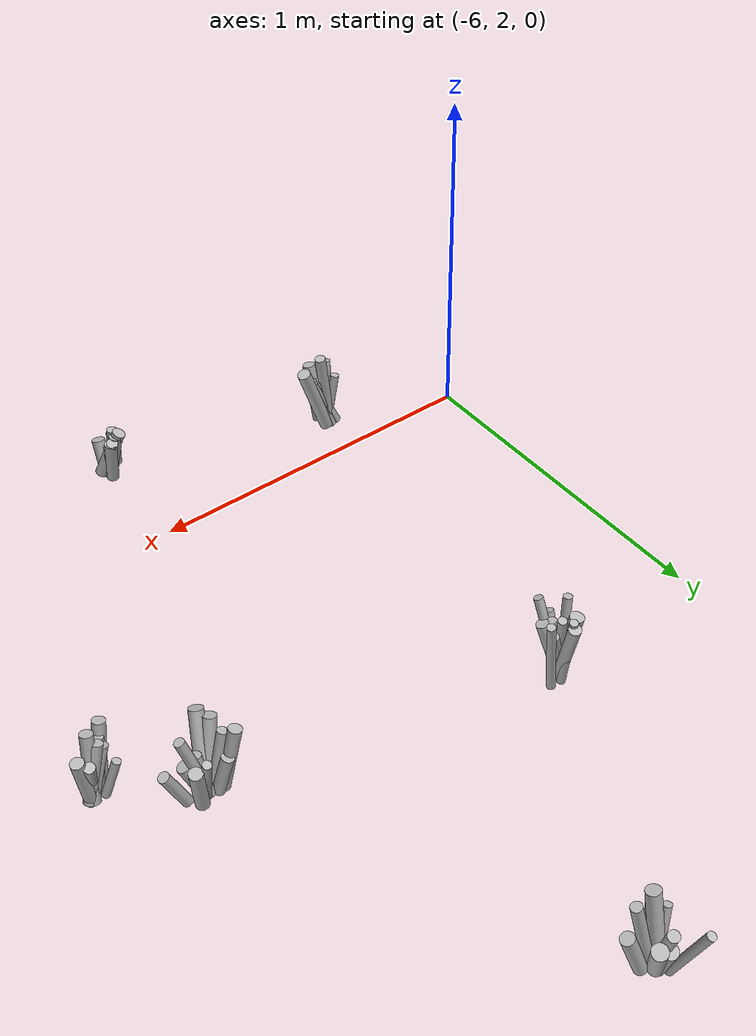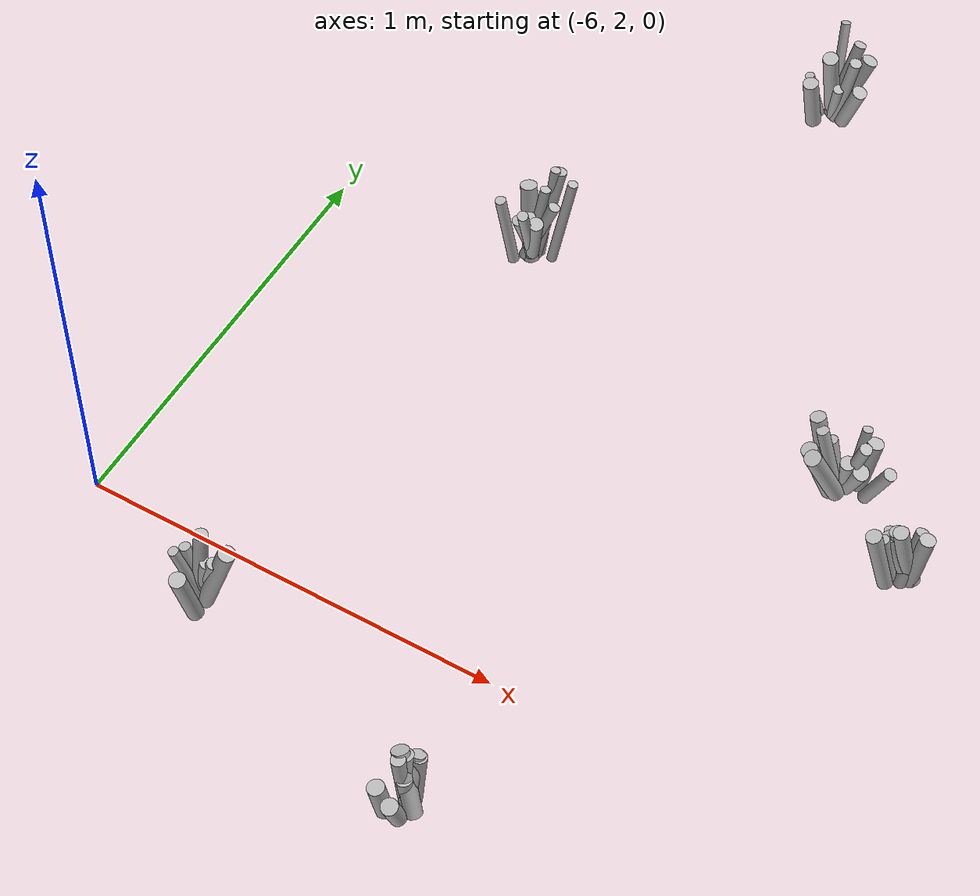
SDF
<sdf version="1.6">
 <world name="default">
  <model name="tussocks">
   <static>true</static>
   <link name="tuft20_0">
    <pose>-5.1018 3.7867 0.0614 0 0.2824 5.3249</pose>
    <visual name="tuft20_0_v">
     <geometry><cylinder><radius>0.0125</radius><length>0.1335</length></cylinder></geometry>
     <material>
      <script>
       <uri>model://bushfire/materials/scripts</uri>
       <uri>model://bushfire/materials/textures</uri>
       <name>Bushfire/Tussock</name>
      </script>
     </material>
    </visual>
   </link>
   <link name="tuft20_1">
    <pose>-5.1377 3.8759 0.0983 0 0.3589 1.8617</pose>
    <visual name="tuft20_1_v">
     <geometry><cylinder><radius>0.0115</radius><length>0.2136</length></cylinder></geometry>
     <material>
      <script>
       <uri>model://bushfire/materials/scripts</uri>
       <uri>model://bushfire/materials/textures</uri>
       <name>Bushfire/Foliage2</name>
      </script>
     </material>
    </visual>
   </link>
   <link name="tuft20_2">
    <pose>-5.1486 3.7559 0.0653 0 0.1508 4.1886</pose>
    <visual name="tuft20_2_v">
     <geometry><cylinder><radius>0.0187</radius><length>0.1419</length></cylinder></geometry>
     <material>
      <script>
       <uri>model://bushfire/materials/scripts</uri>
       <uri>model://bushfire/materials/textures</uri>
       <name>Bushfire/Tussock</name>
      </script>
     </material>
    </visual>
   </link>
   <link name="tuft20_3">
    <pose>-5.1185 3.7922 0.1065 0 0.2208 4.6699</pose>
    <visual name="tuft20_3_v">
     <geometry><cylinder><radius>0.0188</radius><length>0.2314</length></cylinder></geometry>
     <material>
      <script>
       <uri>model://bushfire/materials/scripts</uri>
       <uri>model://bushfire/materials/textures</uri>
       <name>Bushfire/Foliage2</name>
      </script>
     </material>
    </visual>
   </link>
   <link name="tuft20_4">
    <pose>-5.0818 3.7897 0.1094 0 0.2185 5.7816</pose>
    <visual name="tuft20_4_v">
     <geometry><cylinder><radius>0.0143</radius><length>0.2378</length></cylinder></geometry>
     <material>
      <script>
       <uri>model://bushfire/materials/scripts</uri>
       <uri>model://bushfire/materials/textures</uri>
       <name>Bushfire/Tussock</name>
      </script>
     </material>
    </visual>
   </link>
   <link name="tuft20_5">
    <pose>-5.1546 3.7832 0.0638 0 0.2553 3.7586</pose>
    <visual name="tuft20_5_v">
     <geometry><cylinder><radius>0.0113</radius><length>0.1388</length></cylinder></geometry>
     <material>
      <script>
       <uri>model://bushfire/materials/scripts</uri>
       <uri>model://bushfire/materials/textures</uri>
       <name>Bushfire/Foliage2</name>
      </script>
     </material>
    </visual>
   </link>
   <link name="tuft20_6">
    <pose>-5.0622 3.7895 0.0647 0 0.3214 5.9387</pose>
    <visual name="tuft20_6_v">
     <geometry><cylinder><radius>0.0178</radius><length>0.1407</length></cylinder></geometry>
     <material>
      <script>
       <uri>model://bushfire/materials/scripts</uri>
       <uri>model://bushfire/materials/textures</uri>
       <name>Bushfire/Tussock</name>
      </script>
     </material>
    </visual>
   </link>
   <link name="tuft20_7">
    <pose>-5.1047 3.8371 0.0609 0 0.3220 1.1311</pose>
    <visual name="tuft20_7_v">
     <geometry><cylinder><radius>0.0197</radius><length>0.1323</length></cylinder></geometry>
     <material>
      <script>
       <uri>model://bushfire/materials/scripts</uri>
       <uri>model://bushfire/materials/textures</uri>
       <name>Bushfire/Foliage2</name>
      </script>
     </material>
    </visual>
   </link>
   <link name="tuft20_8">
    <pose>-5.1036 3.8341 0.0971 0 0.3296 1.0528</pose>
    <visual name="tuft20_8_v">
     <geometry><cylinder><radius>0.0146</radius><length>0.2111</length></cylinder></geometry>
     <material>
      <script>
       <uri>model://bushfire/materials/scripts</uri>
       <uri>model://bushfire/materials/textures</uri>
       <name>Bushfire/Foliage2</name>
      </script>
     </material>
    </visual>
   </link>
   <link name="tuft20_9">
    <pose>-5.0822 3.8384 0.0815 0 0.3940 0.6854</pose>
    <visual name="tuft20_9_v">
     <geometry><cylinder><radius>0.0197</radius><length>0.1771</length></cylinder></geometry>
     <material>
      <script>
       <uri>model://bushfire/materials/scripts</uri>
       <uri>model://bushfire/materials/textures</uri>
       <name>Bushfire/Tussock</name>
      </script>
     </material>
    </visual>
   </link>
   <link name="tuft24_0">
    <pose>-5.6485 1.8556 0.0969 0 0.2254 3.9898</pose>
    <visual name="tuft24_0_v">
     <geometry><cylinder><radius>0.0116</radius><length>0.2106</length></cylinder></geometry>
     <material>
      <script>
       <uri>model://bushfire/materials/scripts</uri>
       <uri>model://bushfire/materials/textures</uri>
       <name>Bushfire/Foliage2</name>
      </script>
     </material>
    </visual>
   </link>
   <link name="tuft24_2">
    <pose>-5.6255 1.8738 0.0867 0 0.4151 6.1257</pose>
    <visual name="tuft24_2_v">
     <geometry><cylinder><radius>0.0137</radius><length>0.1884</length></cylinder></geometry>
     <material>
      <script>
       <uri>model://bushfire/materials/scripts</uri>
       <uri>model://bushfire/materials/textures</uri>
       <name>Bushfire/Tussock</name>
      </script>
     </material>
    </visual>
   </link>
   <link name="tuft24_3">
    <pose>-5.6271 1.8733 0.0802 0 0.2691 5.9734</pose>
    <visual name="tuft24_3_v">
     <geometry><cylinder><radius>0.0133</radius><length>0.1742</length></cylinder></geometry>
     <material>
      <script>
       <uri>model://bushfire/materials/scripts</uri>
       <uri>model://bushfire/materials/textures</uri>
       <name>Bushfire/Tussock</name>
      </script>
     </material>
    </visual>
   </link>
   <link name="tuft24_7">
    <pose>-5.6290 1.8172 0.0845 0 0.2295 4.7577</pose>
    <visual name="tuft24_7_v">
     <geometry><cylinder><radius>0.0188</radius><length>0.1836</length></cylinder></geometry>
     <material>
      <script>
       <uri>model://bushfire/materials/scripts</uri>
       <uri>model://bushfire/materials/textures</uri>
       <name>Bushfire/Tussock</name>
      </script>
     </material>
    </visual>
   </link>
   <link name="tuft24_8">
    <pose>-5.6482 1.8758 0.0809 0 0.1969 3.0774</pose>
    <visual name="tuft24_8_v">
     <geometry><cylinder><radius>0.0128</radius><length>0.1758</length></cylinder></geometry>
     <material>
      <script>
       <uri>model://bushfire/materials/scripts</uri>
       <uri>model://bushfire/materials/textures</uri>
       <name>Bushfire/Tussock</name>
      </script>
     </material>
    </visual>
   </link>
   <link name="tuft24_9">
    <pose>-5.5927 1.8762 0.1089 0 0.3194 0.0357</pose>
    <visual name="tuft24_9_v">
     <geometry><cylinder><radius>0.0196</radius><length>0.2368</length></cylinder></geometry>
     <material>
      <script>
       <uri>model://bushfire/materials/scripts</uri>
       <uri>model://bushfire/materials/textures</uri>
       <name>Bushfire/Foliage2</name>
      </script>
     </material>
    </visual>
   </link>
   <link name="tuft24_10">
    <pose>-5.6305 1.8748 0.1198 0 0.1145 0.0526</pose>
    <visual name="tuft24_10_v">
     <geometry><cylinder><radius>0.0157</radius><length>0.2605</length></cylinder></geometry>
     <material>
      <script>
       <uri>model://bushfire/materials/scripts</uri>
       <uri>model://bushfire/materials/textures</uri>
       <name>Bushfire/Tussock</name>
      </script>
     </material>
    </visual>
   </link>
   <link name="tuft76_0">
    <pose>-5.4969 3.0926 0.1189 0 0.1651 1.2052</pose>
    <visual name="tuft76_0_v">
     <geometry><cylinder><radius>0.0116</radius><length>0.2586</length></cylinder></geometry>
     <material>
      <script>
       <uri>model://bushfire/materials/scripts</uri>
       <uri>model://bushfire/materials/textures</uri>
       <name>Bushfire/Foliage2</name>
      </script>
     </material>
    </visual>
   </link>
   <link name="tuft76_1">
    <pose>-5.5089 3.0333 0.0812 0 0.1735 5.0363</pose>
    <visual name="tuft76_1_v">
     <geometry><cylinder><radius>0.0152</radius><length>0.1766</length></cylinder></geometry>
     <material>
      <script>
       <uri>model://bushfire/materials/scripts</uri>
       <uri>model://bushfire/materials/textures</uri>
       <name>Bushfire/Tussock</name>
      </script>
     </material>
    </visual>
   </link>
   <link name="tuft76_2">
    <pose>-5.4988 3.0310 0.0810 0 0.3015 5.4340</pose>
    <visual name="tuft76_2_v">
     <geometry><cylinder><radius>0.0172</radius><length>0.1760</length></cylinder></geometry>
     <material>
      <script>
       <uri>model://bushfire/materials/scripts</uri>
       <uri>model://bushfire/materials/textures</uri>
       <name>Bushfire/Foliage2</name>
      </script>
     </material>
    </visual>
   </link>
   <link name="tuft76_3">
    <pose>-5.4526 3.0815 0.1208 0 0.1723 0.4986</pose>
    <visual name="tuft76_3_v">
     <geometry><cylinder><radius>0.0118</radius><length>0.2626</length></cylinder></geometry>
     <material>
      <script>
       <uri>model://bushfire/materials/scripts</uri>
       <uri>model://bushfire/materials/textures</uri>
       <name>Bushfire/Foliage2</name>
      </script>
     </material>
    </visual>
   </link>
   <link name="tuft76_4">
    <pose>-5.4974 3.0896 0.1151 0 0.2924 1.1928</pose>
    <visual name="tuft76_4_v">
     <geometry><cylinder><radius>0.0168</radius><length>0.2502</length></cylinder></geometry>
     <material>
      <script>
       <uri>model://bushfire/materials/scripts</uri>
       <uri>model://bushfire/materials/textures</uri>
       <name>Bushfire/Foliage2</name>
      </script>
     </material>
    </visual>
   </link>
   <link name="tuft76_5">
    <pose>-5.5590 3.0137 0.0972 0 0.1447 3.7946</pose>
    <visual name="tuft76_5_v">
     <geometry><cylinder><radius>0.0128</radius><length>0.2113</length></cylinder></geometry>
     <material>
      <script>
       <uri>model://bushfire/materials/scripts</uri>
       <uri>model://bushfire/materials/textures</uri>
       <name>Bushfire/Tussock</name>
      </script>
     </material>
    </visual>
   </link>
   <link name="tuft76_6">
    <pose>-5.4979 3.0555 0.0863 0 0.3650 0.4312</pose>
    <visual name="tuft76_6_v">
     <geometry><cylinder><radius>0.0139</radius><length>0.1876</length></cylinder></geometry>
     <material>
      <script>
       <uri>model://bushfire/materials/scripts</uri>
       <uri>model://bushfire/materials/textures</uri>
       <name>Bushfire/Foliage2</name>
      </script>
     </material>
    </visual>
   </link>
   <link name="tuft76_7">
    <pose>-5.5158 3.0256 0.0870 0 0.3587 4.6268</pose>
    <visual name="tuft76_7_v">
     <geometry><cylinder><radius>0.0134</radius><length>0.1891</length></cylinder></geometry>
     <material>
      <script>
       <uri>model://bushfire/materials/scripts</uri>
       <uri>model://bushfire/materials/textures</uri>
       <name>Bushfire/Foliage2</name>
      </script>
     </material>
    </visual>
   </link>
   <link name="tuft76_8">
    <pose>-5.5059 3.0565 0.1056 0 0.1811 0.8019</pose>
    <visual name="tuft76_8_v">
     <geometry><cylinder><radius>0.0122</radius><length>0.2296</length></cylinder></geometry>
     <material>
      <script>
       <uri>model://bushfire/materials/scripts</uri>
       <uri>model://bushfire/materials/textures</uri>
       <name>Bushfire/Foliage2</name>
      </script>
     </material>
    </visual>
   </link>
   <link name="tuft76_9">
    <pose>-5.5258 3.0614 0.0991 0 0.1690 2.3023</pose>
    <visual name="tuft76_9_v">
     <geometry><cylinder><radius>0.0196</radius><length>0.2154</length></cylinder></geometry>
     <material>
      <script>
       <uri>model://bushfire/materials/scripts</uri>
       <uri>model://bushfire/materials/textures</uri>
       <name>Bushfire/Tussock</name>
      </script>
     </material>
    </visual>
   </link>
   <link name="tuft76_10">
    <pose>-5.5054 3.0140 0.1088 0 0.3416 4.9556</pose>
    <visual name="tuft76_10_v">
     <geometry><cylinder><radius>0.0127</radius><length>0.2366</length></cylinder></geometry>
     <material>
      <script>
       <uri>model://bushfire/materials/scripts</uri>
       <uri>model://bushfire/materials/textures</uri>
       <name>Bushfire/Tussock</name>
      </script>
     </material>
    </visual>
   </link>
   <link name="tuft111_0">
    <pose>-4.5826 2.8540 0.0785 0 0.2405 1.3406</pose>
    <visual name="tuft111_0_v">
     <geometry><cylinder><radius>0.0119</radius><length>0.1708</length></cylinder></geometry>
     <material>
      <script>
       <uri>model://bushfire/materials/scripts</uri>
       <uri>model://bushfire/materials/textures</uri>
       <name>Bushfire/Foliage2</name>
      </script>
     </material>
    </visual>
   </link>
   <link name="tuft111_1">
    <pose>-4.6344 2.8412 0.0530 0 0.2700 2.7890</pose>
    <visual name="tuft111_1_v">
     <geometry><cylinder><radius>0.0170</radius><length>0.1152</length></cylinder></geometry>
     <material>
      <script>
       <uri>model://bushfire/materials/scripts</uri>
       <uri>model://bushfire/materials/textures</uri>
       <name>Bushfire/Foliage2</name>
      </script>
     </material>
    </visual>
   </link>
   <link name="tuft111_2">
    <pose>-4.5879 2.8157 0.0577 0 0.2332 4.8913</pose>
    <visual name="tuft111_2_v">
     <geometry><cylinder><radius>0.0174</radius><length>0.1254</length></cylinder></geometry>
     <material>
      <script>
       <uri>model://bushfire/materials/scripts</uri>
       <uri>model://bushfire/materials/textures</uri>
       <name>Bushfire/Foliage2</name>
      </script>
     </material>
    </visual>
   </link>
   <link name="tuft111_3">
    <pose>-4.5606 2.8546 0.0675 0 0.1801 0.8045</pose>
    <visual name="tuft111_3_v">
     <geometry><cylinder><radius>0.0183</radius><length>0.1468</length></cylinder></geometry>
     <material>
      <script>
       <uri>model://bushfire/materials/scripts</uri>
       <uri>model://bushfire/materials/textures</uri>
       <name>Bushfire/Foliage2</name>
      </script>
     </material>
    </visual>
   </link>
   <link name="tuft111_4">
    <pose>-4.6216 2.7650 0.0921 0 0.4098 4.2184</pose>
    <visual name="tuft111_4_v">
     <geometry><cylinder><radius>0.0195</radius><length>0.2002</length></cylinder></geometry>
     <material>
      <script>
       <uri>model://bushfire/materials/scripts</uri>
       <uri>model://bushfire/materials/textures</uri>
       <name>Bushfire/Foliage2</name>
      </script>
     </material>
    </visual>
   </link>
   <link name="tuft111_5">
    <pose>-4.6381 2.7778 0.0838 0 0.3430 3.9086</pose>
    <visual name="tuft111_5_v">
     <geometry><cylinder><radius>0.0192</radius><length>0.1823</length></cylinder></geometry>
     <material>
      <script>
       <uri>model://bushfire/materials/scripts</uri>
       <uri>model://bushfire/materials/textures</uri>
       <name>Bushfire/Foliage2</name>
      </script>
     </material>
    </visual>
   </link>
   <link name="tuft111_6">
    <pose>-4.5184 2.8184 0.0620 0 0.3935 6.1952</pose>
    <visual name="tuft111_6_v">
     <geometry><cylinder><radius>0.0152</radius><length>0.1347</length></cylinder></geometry>
     <material>
      <script>
       <uri>model://bushfire/materials/scripts</uri>
       <uri>model://bushfire/materials/textures</uri>
       <name>Bushfire/Tussock</name>
      </script>
     </material>
    </visual>
   </link>
   <link name="tuft111_7">
    <pose>-4.6589 2.8339 0.0877 0 0.2352 3.0085</pose>
    <visual name="tuft111_7_v">
     <geometry><cylinder><radius>0.0180</radius><length>0.1906</length></cylinder></geometry>
     <material>
      <script>
       <uri>model://bushfire/materials/scripts</uri>
       <uri>model://bushfire/materials/textures</uri>
       <name>Bushfire/Foliage2</name>
      </script>
     </material>
    </visual>
   </link>
   <link name="tuft111_8">
    <pose>-4.5765 2.8170 0.0946 0 0.2994 5.7492</pose>
    <visual name="tuft111_8_v">
     <geometry><cylinder><radius>0.0140</radius><length>0.2057</length></cylinder></geometry>
     <material>
      <script>
       <uri>model://bushfire/materials/scripts</uri>
       <uri>model://bushfire/materials/textures</uri>
       <name>Bushfire/Foliage2</name>
      </script>
     </material>
    </visual>
   </link>
   <link name="tuft111_9">
    <pose>-4.6363 2.8185 0.0831 0 0.2475 3.2730</pose>
    <visual name="tuft111_9_v">
     <geometry><cylinder><radius>0.0141</radius><length>0.1807</length></cylinder></geometry>
     <material>
      <script>
       <uri>model://bushfire/materials/scripts</uri>
       <uri>model://bushfire/materials/textures</uri>
       <name>Bushfire/Tussock</name>
      </script>
     </material>
    </visual>
   </link>
   <link name="tuft111_10">
    <pose>-4.5724 2.8144 0.0523 0 0.4054 5.7424</pose>
    <visual name="tuft111_10_v">
     <geometry><cylinder><radius>0.0188</radius><length>0.1137</length></cylinder></geometry>
     <material>
      <script>
       <uri>model://bushfire/materials/scripts</uri>
       <uri>model://bushfire/materials/textures</uri>
       <name>Bushfire/Tussock</name>
      </script>
     </material>
    </visual>
   </link>
   <link name="tuft134_1">
    <pose>-4.4120 2.6497 0.0733 0 0.2071 3.7266</pose>
    <visual name="tuft134_1_v">
     <geometry><cylinder><radius>0.0124</radius><length>0.1594</length></cylinder></geometry>
     <material>
      <script>
       <uri>model://bushfire/materials/scripts</uri>
       <uri>model://bushfire/materials/textures</uri>
       <name>Bushfire/Tussock</name>
      </script>
     </material>
    </visual>
   </link>
   <link name="tuft134_2">
    <pose>-4.3941 2.6676 0.0713 0 0.3865 3.4854</pose>
    <visual name="tuft134_2_v">
     <geometry><cylinder><radius>0.0176</radius><length>0.1549</length></cylinder></geometry>
     <material>
      <script>
       <uri>model://bushfire/materials/scripts</uri>
       <uri>model://bushfire/materials/textures</uri>
       <name>Bushfire/Tussock</name>
      </script>
     </material>
    </visual>
   </link>
   <link name="tuft134_3">
    <pose>-4.3839 2.6716 0.0804 0 0.3029 3.4515</pose>
    <visual name="tuft134_3_v">
     <geometry><cylinder><radius>0.0165</radius><length>0.1748</length></cylinder></geometry>
     <material>
      <script>
       <uri>model://bushfire/materials/scripts</uri>
       <uri>model://bushfire/materials/textures</uri>
       <name>Bushfire/Foliage2</name>
      </script>
     </material>
    </visual>
   </link>
   <link name="tuft134_4">
    <pose>-4.4179 2.6907 0.0544 0 0.3277 2.7897</pose>
    <visual name="tuft134_4_v">
     <geometry><cylinder><radius>0.0118</radius><length>0.1182</length></cylinder></geometry>
     <material>
      <script>
       <uri>model://bushfire/materials/scripts</uri>
       <uri>model://bushfire/materials/textures</uri>
       <name>Bushfire/Tussock</name>
      </script>
     </material>
    </visual>
   </link>
   <link name="tuft134_6">
    <pose>-4.4248 2.6324 0.0867 0 0.2346 3.8390</pose>
    <visual name="tuft134_6_v">
     <geometry><cylinder><radius>0.0177</radius><length>0.1886</length></cylinder></geometry>
     <material>
      <script>
       <uri>model://bushfire/materials/scripts</uri>
       <uri>model://bushfire/materials/textures</uri>
       <name>Bushfire/Foliage2</name>
      </script>
     </material>
    </visual>
   </link>
   <link name="tuft134_7">
    <pose>-4.3818 2.6642 0.0924 0 0.2128 4.0964</pose>
    <visual name="tuft134_7_v">
     <geometry><cylinder><radius>0.0173</radius><length>0.2009</length></cylinder></geometry>
     <material>
      <script>
       <uri>model://bushfire/materials/scripts</uri>
       <uri>model://bushfire/materials/textures</uri>
       <name>Bushfire/Tussock</name>
      </script>
     </material>
    </visual>
   </link>
   <link name="tuft134_10">
    <pose>-4.3728 2.6794 0.0706 0 0.3199 1.2473</pose>
    <visual name="tuft134_10_v">
     <geometry><cylinder><radius>0.0148</radius><length>0.1535</length></cylinder></geometry>
     <material>
      <script>
       <uri>model://bushfire/materials/scripts</uri>
       <uri>model://bushfire/materials/textures</uri>
       <name>Bushfire/Foliage2</name>
      </script>
     </material>
    </visual>
   </link>
   <link name="tuft134_11">
    <pose>-4.3557 2.6797 0.0748 0 0.1345 0.2618</pose>
    <visual name="tuft134_11_v">
     <geometry><cylinder><radius>0.0179</radius><length>0.1626</length></cylinder></geometry>
     <material>
      <script>
       <uri>model://bushfire/materials/scripts</uri>
       <uri>model://bushfire/materials/textures</uri>
       <name>Bushfire/Foliage2</name>
      </script>
     </material>
    </visual>
   </link>
   <link name="tuft160_0">
    <pose>-5.0023 1.6258 0.0396 0 0.3062 4.6519</pose>
    <visual name="tuft160_0_v">
     <geometry><cylinder><radius>0.0190</radius><length>0.0861</length></cylinder></geometry>
     <material>
      <script>
       <uri>model://bushfire/materials/scripts</uri>
       <uri>model://bushfire/materials/textures</uri>
       <name>Bushfire/Foliage2</name>
      </script>
     </material>
    </visual>
   </link>
   <link name="tuft160_1">
    <pose>-5.0017 1.6757 0.0445 0 0.1017 3.4205</pose>
    <visual name="tuft160_1_v">
     <geometry><cylinder><radius>0.0176</radius><length>0.0967</length></cylinder></geometry>
     <material>
      <script>
       <uri>model://bushfire/materials/scripts</uri>
       <uri>model://bushfire/materials/textures</uri>
       <name>Bushfire/Tussock</name>
      </script>
     </material>
    </visual>
   </link>
   <link name="tuft160_2">
    <pose>-5.0393 1.6342 0.0463 0 0.1488 3.9521</pose>
    <visual name="tuft160_2_v">
     <geometry><cylinder><radius>0.0192</radius><length>0.1007</length></cylinder></geometry>
     <material>
      <script>
       <uri>model://bushfire/materials/scripts</uri>
       <uri>model://bushfire/materials/textures</uri>
       <name>Bushfire/Foliage2</name>
      </script>
     </material>
    </visual>
   </link>
   <link name="tuft160_3">
    <pose>-5.0087 1.6872 0.0691 0 0.2067 2.2903</pose>
    <visual name="tuft160_3_v">
     <geometry><cylinder><radius>0.0198</radius><length>0.1502</length></cylinder></geometry>
     <material>
      <script>
       <uri>model://bushfire/materials/scripts</uri>
       <uri>model://bushfire/materials/textures</uri>
       <name>Bushfire/Foliage2</name>
      </script>
     </material>
    </visual>
   </link>
   <link name="tuft160_4">
    <pose>-4.9952 1.7023 0.0652 0 0.1566 1.4172</pose>
    <visual name="tuft160_4_v">
     <geometry><cylinder><radius>0.0173</radius><length>0.1416</length></cylinder></geometry>
     <material>
      <script>
       <uri>model://bushfire/materials/scripts</uri>
       <uri>model://bushfire/materials/textures</uri>
       <name>Bushfire/Foliage2</name>
      </script>
     </material>
    </visual>
   </link>
   <link name="tuft160_5">
    <pose>-5.0127 1.6774 0.0728 0 0.1009 3.0631</pose>
    <visual name="tuft160_5_v">
     <geometry><cylinder><radius>0.0160</radius><length>0.1582</length></cylinder></geometry>
     <material>
      <script>
       <uri>model://bushfire/materials/scripts</uri>
       <uri>model://bushfire/materials/textures</uri>
       <name>Bushfire/Foliage2</name>
      </script>
     </material>
    </visual>
   </link>
   <link name="tuft160_6">
    <pose>-5.0042 1.6802 0.0748 0 0.4154 2.4834</pose>
    <visual name="tuft160_6_v">
     <geometry><cylinder><radius>0.0193</radius><length>0.1626</length></cylinder></geometry>
     <material>
      <script>
       <uri>model://bushfire/materials/scripts</uri>
       <uri>model://bushfire/materials/textures</uri>
       <name>Bushfire/Foliage2</name>
      </script>
     </material>
    </visual>
   </link>
   <link name="tuft160_7">
    <pose>-4.9987 1.6875 0.0690 0 0.4062 1.5246</pose>
    <visual name="tuft160_7_v">
     <geometry><cylinder><radius>0.0164</radius><length>0.1501</length></cylinder></geometry>
     <material>
      <script>
       <uri>model://bushfire/materials/scripts</uri>
       <uri>model://bushfire/materials/textures</uri>
       <name>Bushfire/Tussock</name>
      </script>
     </material>
    </visual>
   </link>
  </model>
 </world>
</sdf>
